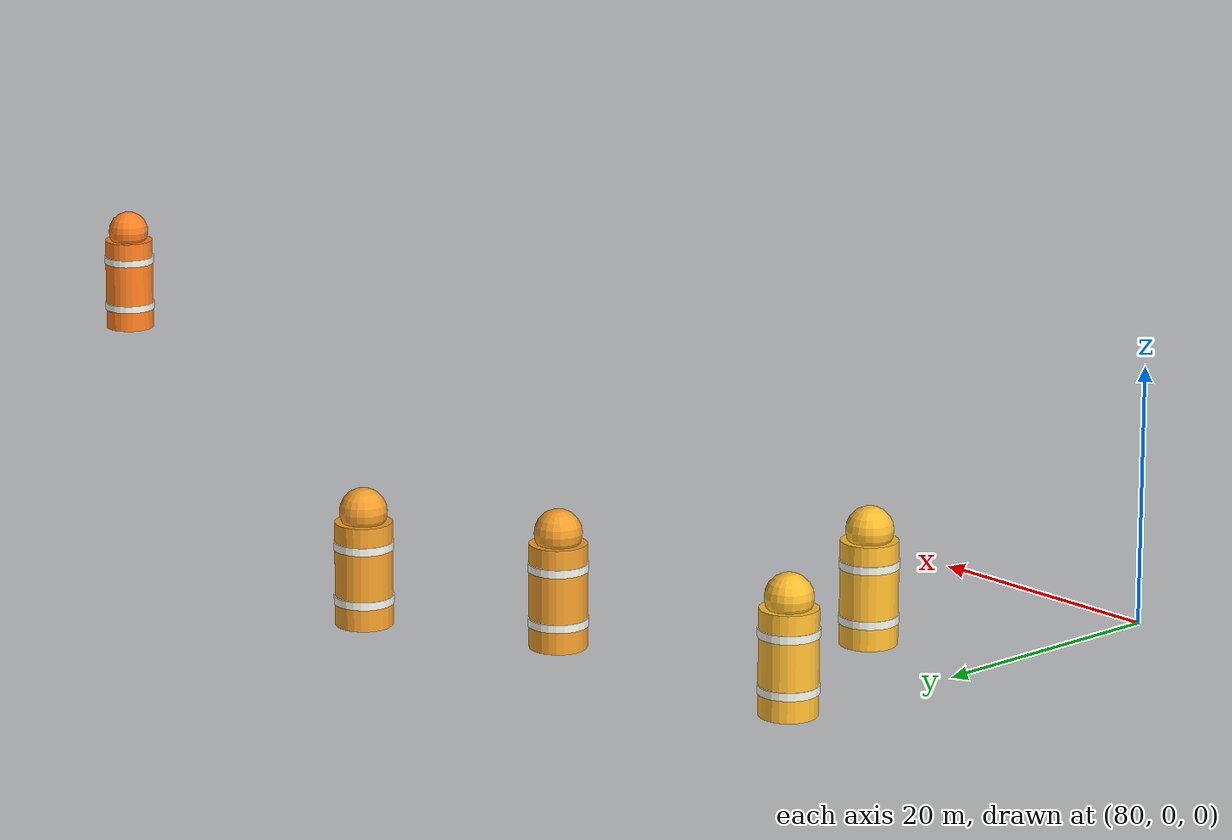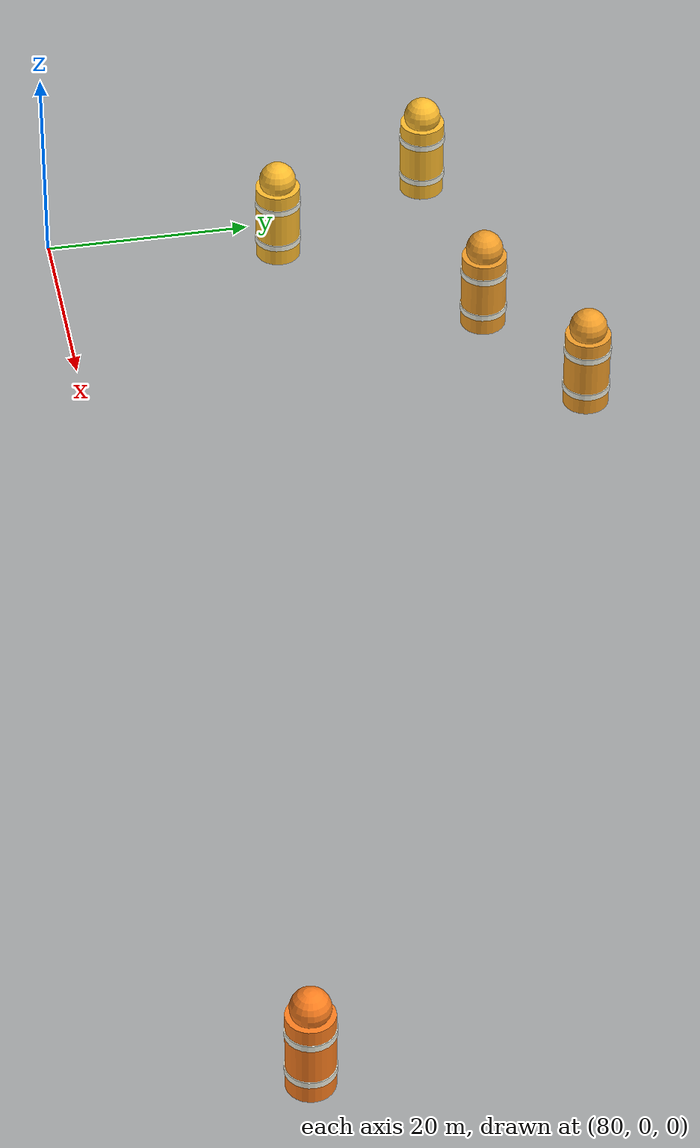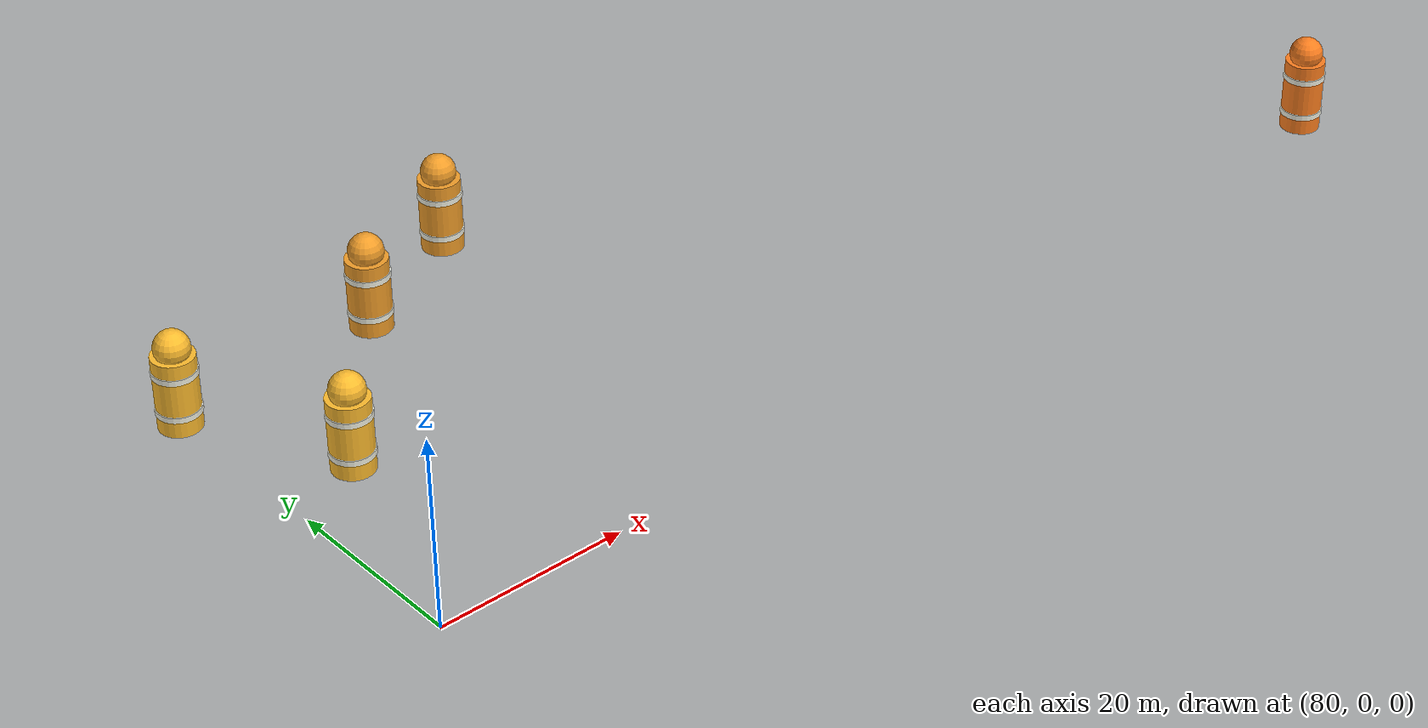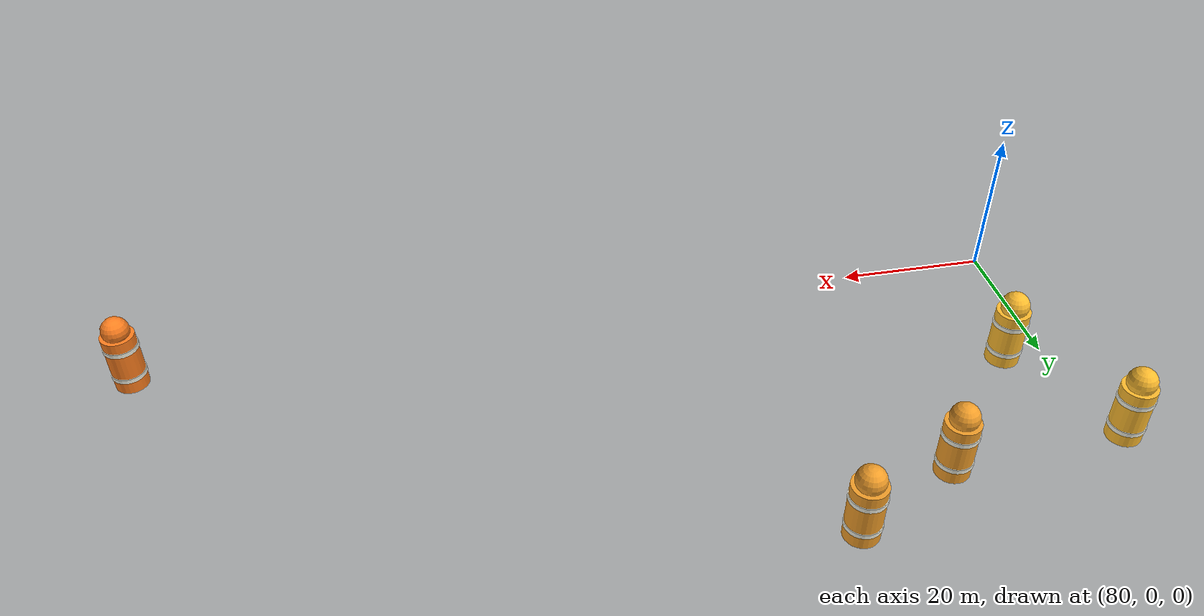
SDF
<sdf version="1.6">
 <world name="maritime_level_m_gps_assets_quick_complex">
  <scene>
   <ambient>0.45 0.48 0.52 1.0</ambient>
   <sky><clouds><speed>0</speed></clouds></sky>
   <shadows>true</shadows>
  </scene>
  <include><uri>model://sun</uri></include>
  <physics name="default_physics" default="0" type="ode">
   <gravity>0 0 -9.8066</gravity>
   <max_step_size>0.004</max_step_size>
   <real_time_factor>1.0</real_time_factor>
   <real_time_update_rate>250</real_time_update_rate>
  </physics>
  <model name="cruise_ship_hidden_support_deck">
   <static>true</static>
   <pose>30.5 16 4.54 0 0 0</pose>
   <link name="link">
    <collision name="collision"><geometry><box><size>64 12.5 0.24</size></box></geometry></collision>
   </link>
  </model>
  <model name="cruise_ship_bow_h_pad_zone">
   <static>true</static>
   <pose>55 16 4.685 0 0 0</pose>
   <link name="link">
    <collision name="collision"><geometry><box><size>4.8 3 0.12</size></box></geometry></collision>
   </link>
  </model>
  <model name="o1_left_of_reference">
   <static>true</static>
   <pose>78.564 38.061 5.5 0 0 0</pose>
   <link name="link">
    <collision name="collision">
     <geometry><cylinder><radius>3.1</radius><length>11</length></cylinder></geometry>
    </collision>
    <visual name="body">
     <geometry><cylinder><radius>2.17</radius><length>7.92</length></cylinder></geometry>
     <material><ambient>1 0.74 0.18 1</ambient><diffuse>1 0.74 0.18 1</diffuse></material>
    </visual>
    <visual name="upper_band">
     <pose>0 0 2.2 0 0 0</pose>
     <geometry><cylinder><radius>2.263</radius><length>0.605</length></cylinder></geometry>
     <material><ambient>0.96 0.96 0.9 1</ambient><diffuse>0.96 0.96 0.9 1</diffuse></material>
    </visual>
    <visual name="lower_band">
     <pose>0 0 -1.98 0 0 0</pose>
     <geometry><cylinder><radius>2.263</radius><length>0.605</length></cylinder></geometry>
     <material><ambient>0.96 0.96 0.9 1</ambient><diffuse>0.96 0.96 0.9 1</diffuse></material>
    </visual>
    <visual name="top_cap">
     <pose>0 0 4.73 0 0 0</pose>
     <geometry><sphere><radius>1.798</radius></sphere></geometry>
     <material><ambient>1 0.74 0.18 1</ambient><diffuse>1 0.74 0.18 1</diffuse></material>
    </visual>
   </link>
  </model>
  <model name="o2_right_of_reference">
   <static>true</static>
   <pose>86.715 22.012 5.5 0 0 0</pose>
   <link name="link">
    <collision name="collision">
     <geometry><cylinder><radius>3.1</radius><length>11</length></cylinder></geometry>
    </collision>
    <visual name="body">
     <geometry><cylinder><radius>2.17</radius><length>7.92</length></cylinder></geometry>
     <material><ambient>1 0.74 0.18 1</ambient><diffuse>1 0.74 0.18 1</diffuse></material>
    </visual>
    <visual name="upper_band">
     <pose>0 0 2.2 0 0 0</pose>
     <geometry><cylinder><radius>2.263</radius><length>0.605</length></cylinder></geometry>
     <material><ambient>0.96 0.96 0.9 1</ambient><diffuse>0.96 0.96 0.9 1</diffuse></material>
    </visual>
    <visual name="lower_band">
     <pose>0 0 -1.98 0 0 0</pose>
     <geometry><cylinder><radius>2.263</radius><length>0.605</length></cylinder></geometry>
     <material><ambient>0.96 0.96 0.9 1</ambient><diffuse>0.96 0.96 0.9 1</diffuse></material>
    </visual>
    <visual name="top_cap">
     <pose>0 0 4.73 0 0 0</pose>
     <geometry><sphere><radius>1.798</radius></sphere></geometry>
     <material><ambient>1 0.74 0.18 1</ambient><diffuse>1 0.74 0.18 1</diffuse></material>
    </visual>
   </link>
  </model>
  <model name="o3_on_reference">
   <static>true</static>
   <pose>101.363 39.546 5.5 0 0 0</pose>
   <link name="link">
    <collision name="collision">
     <geometry><cylinder><radius>3.1</radius><length>11</length></cylinder></geometry>
    </collision>
    <visual name="body">
     <geometry><cylinder><radius>2.17</radius><length>7.92</length></cylinder></geometry>
     <material><ambient>0.95 0.62 0.16 1</ambient><diffuse>0.95 0.62 0.16 1</diffuse></material>
    </visual>
    <visual name="upper_band">
     <pose>0 0 2.2 0 0 0</pose>
     <geometry><cylinder><radius>2.263</radius><length>0.605</length></cylinder></geometry>
     <material><ambient>0.96 0.96 0.9 1</ambient><diffuse>0.96 0.96 0.9 1</diffuse></material>
    </visual>
    <visual name="lower_band">
     <pose>0 0 -1.98 0 0 0</pose>
     <geometry><cylinder><radius>2.263</radius><length>0.605</length></cylinder></geometry>
     <material><ambient>0.96 0.96 0.9 1</ambient><diffuse>0.96 0.96 0.9 1</diffuse></material>
    </visual>
    <visual name="top_cap">
     <pose>0 0 4.73 0 0 0</pose>
     <geometry><sphere><radius>1.798</radius></sphere></geometry>
     <material><ambient>0.95 0.62 0.16 1</ambient><diffuse>0.95 0.62 0.16 1</diffuse></material>
    </visual>
   </link>
  </model>
  <model name="o4_on_reference">
   <static>true</static>
   <pose>115.183 46.565 5.5 0 0 0</pose>
   <link name="link">
    <collision name="collision">
     <geometry><cylinder><radius>3.1</radius><length>11</length></cylinder></geometry>
    </collision>
    <visual name="body">
     <geometry><cylinder><radius>2.17</radius><length>7.92</length></cylinder></geometry>
     <material><ambient>0.95 0.62 0.16 1</ambient><diffuse>0.95 0.62 0.16 1</diffuse></material>
    </visual>
    <visual name="upper_band">
     <pose>0 0 2.2 0 0 0</pose>
     <geometry><cylinder><radius>2.263</radius><length>0.605</length></cylinder></geometry>
     <material><ambient>0.96 0.96 0.9 1</ambient><diffuse>0.96 0.96 0.9 1</diffuse></material>
    </visual>
    <visual name="lower_band">
     <pose>0 0 -1.98 0 0 0</pose>
     <geometry><cylinder><radius>2.263</radius><length>0.605</length></cylinder></geometry>
     <material><ambient>0.96 0.96 0.9 1</ambient><diffuse>0.96 0.96 0.9 1</diffuse></material>
    </visual>
    <visual name="top_cap">
     <pose>0 0 4.73 0 0 0</pose>
     <geometry><sphere><radius>1.798</radius></sphere></geometry>
     <material><ambient>0.95 0.62 0.16 1</ambient><diffuse>0.95 0.62 0.16 1</diffuse></material>
    </visual>
   </link>
  </model>
  <model name="o5_near_island_bank">
   <static>true</static>
   <pose>197.5 5 5.5 0 0 0</pose>
   <link name="link">
    <collision name="collision">
     <geometry><cylinder><radius>3</radius><length>11</length></cylinder></geometry>
    </collision>
    <visual name="body">
     <geometry><cylinder><radius>2.1</radius><length>7.92</length></cylinder></geometry>
     <material><ambient>1 0.5 0.12 1</ambient><diffuse>1 0.5 0.12 1</diffuse></material>
    </visual>
    <visual name="upper_band">
     <pose>0 0 2.2 0 0 0</pose>
     <geometry><cylinder><radius>2.19</radius><length>0.605</length></cylinder></geometry>
     <material><ambient>0.96 0.96 0.9 1</ambient><diffuse>0.96 0.96 0.9 1</diffuse></material>
    </visual>
    <visual name="lower_band">
     <pose>0 0 -1.98 0 0 0</pose>
     <geometry><cylinder><radius>2.19</radius><length>0.605</length></cylinder></geometry>
     <material><ambient>0.96 0.96 0.9 1</ambient><diffuse>0.96 0.96 0.9 1</diffuse></material>
    </visual>
    <visual name="top_cap">
     <pose>0 0 4.73 0 0 0</pose>
     <geometry><sphere><radius>1.74</radius></sphere></geometry>
     <material><ambient>1 0.5 0.12 1</ambient><diffuse>1 0.5 0.12 1</diffuse></material>
    </visual>
   </link>
  </model>
  <model name="w1_wind_channel_cloud">
   <static>true</static>
   <pose>145.816 34.791 9 0 0 -0.570212</pose>
   <link name="link">
    <collision name="collision"><geometry><box><size>10 8 18</size></box></geometry></collision>
   </link>
  </model>
  <model name="w2_wind_channel_cloud">
   <static>true</static>
   <pose>156.597 27.878 9 0 0 -0.570212</pose>
   <link name="link">
    <collision name="collision"><geometry><box><size>10 8 18</size></box></geometry></collision>
   </link>
  </model>
  <model name="w3_wind_channel_cloud">
   <static>true</static>
   <pose>167.378 20.965 9 0 0 -0.570212</pose>
   <link name="link">
    <collision name="collision"><geometry><box><size>10 8 18</size></box></geometry></collision>
   </link>
  </model>
  <model name="w4_wind_channel_cloud">
   <static>true</static>
   <pose>178.158 14.051 9 0 0 -0.570212</pose>
   <link name="link">
    <collision name="collision"><geometry><box><size>10 8 18</size></box></geometry></collision>
   </link>
  </model>
 </world>
</sdf>
